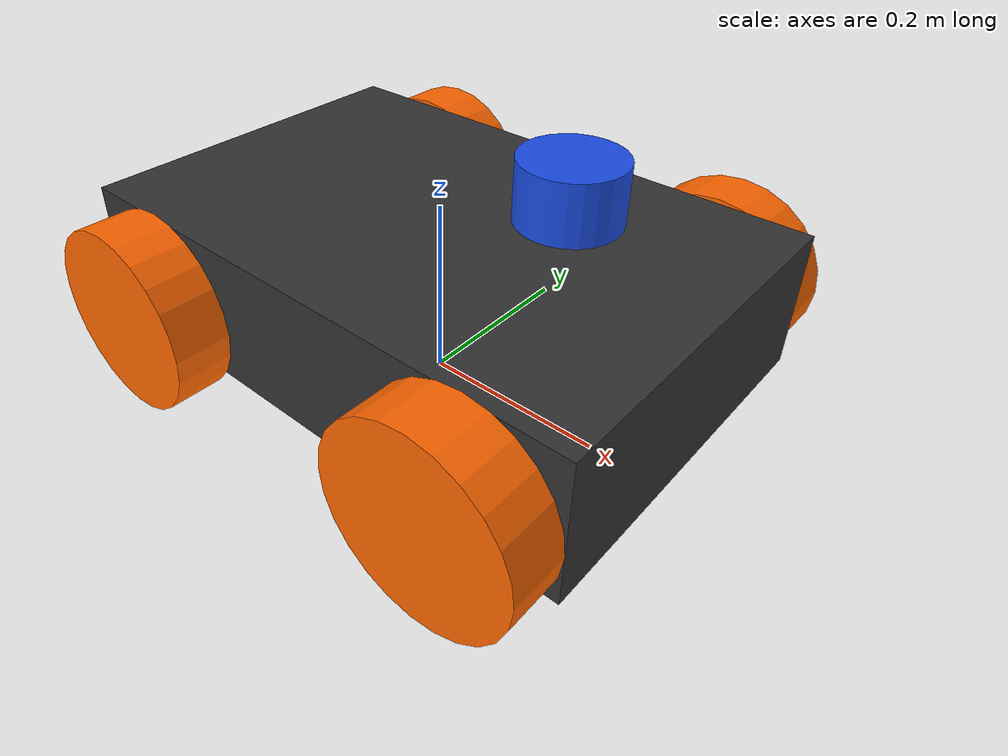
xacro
<?xml version="1.0"?>
<robot xmlns:xacro="http://www.ros.org/wiki/xacro" name="apex_sim_chassis">

  <!-- ==================== Base Link & Chassis ==================== -->
  <link name="base_link"/>

  <joint name="base_link_to_chassis" type="fixed">
    <parent link="base_link"/>
    <child link="chassis"/>
    <origin xyz="0 0 0.12" rpy="0 0 0"/>
  </joint>

  <link name="chassis">
    <visual>
      <origin xyz="0 0 0" rpy="0 0 0"/>
      <geometry>
        <box size="0.6 0.4 0.15"/>
      </geometry>
      <material name="dark">
        <color rgba="0.2 0.2 0.2 1.0"/>
      </material>
    </visual>
    <collision>
      <origin xyz="0 0 0" rpy="0 0 0"/>
      <geometry>
        <box size="0.6 0.4 0.15"/>
      </geometry>
    </collision>
    <inertial>
      <origin xyz="0 0 0" rpy="0 0 0"/>
      <mass value="15.0"/>
      <inertia ixx="0.22" ixy="0" ixz="0" iyy="0.47" iyz="0" izz="0.65"/>
    </inertial>
  </link>

  <!-- ==================== Wheels ==================== -->
  <xacro:macro name="wheel" params="name x_pos y_pos">
    <joint name="${name}_joint" type="continuous">
      <parent link="chassis"/>
      <child link="${name}_link"/>
      <origin xyz="${x_pos} ${y_pos} -0.02" rpy="-1.5708 0 0"/>
      <axis xyz="0 0 1"/>
    </joint>

    <link name="${name}_link">
      <visual>
        <origin xyz="0 0 0" rpy="0 0 0"/>
        <geometry>
          <cylinder radius="0.1" length="0.06"/>
        </geometry>
        <material name="orange">
          <color rgba="1.0 0.4 0.0 1.0"/>
        </material>
      </visual>
      <collision>
        <origin xyz="0 0 0" rpy="0 0 0"/>
        <geometry>
          <cylinder radius="0.1" length="0.06"/>
        </geometry>
      </collision>
      <inertial>
        <origin xyz="0 0 0" rpy="0 0 0"/>
        <mass value="1.5"/>
        <inertia ixx="0.004" ixy="0" ixz="0" iyy="0.004" iyz="0" izz="0.0075"/>
      </inertial>
    </link>

    <gazebo reference="${name}_link">
      <mu1>1.2</mu1>
      <mu2>1.2</mu2>
      <material>Gazebo/Orange</material>
    </gazebo>
  </xacro:macro>

  <xacro:wheel name="front_left_wheel" x_pos="0.2" y_pos="0.23"/>
  <xacro:wheel name="front_right_wheel" x_pos="0.2" y_pos="-0.23"/>
  <xacro:wheel name="rear_left_wheel" x_pos="-0.2" y_pos="0.23"/>
  <xacro:wheel name="rear_right_wheel" x_pos="-0.2" y_pos="-0.23"/>

  <!-- ==================== LiDAR ==================== -->
  <joint name="lidar_joint" type="fixed">
    <parent link="chassis"/>
    <child link="lidar_link"/>
    <origin xyz="0.15 0 0.15" rpy="0 0 0"/>
  </joint>

  <link name="lidar_link">
    <visual>
      <origin xyz="0 0 0" rpy="0 0 0"/>
      <geometry>
        <cylinder radius="0.05" length="0.06"/>
      </geometry>
      <material name="blue">
        <color rgba="0.1 0.3 0.9 1.0"/>
      </material>
    </visual>
    <collision>
      <origin xyz="0 0 0" rpy="0 0 0"/>
      <geometry>
        <cylinder radius="0.05" length="0.06"/>
      </geometry>
    </collision>
    <inertial>
      <mass value="0.2"/>
      <inertia ixx="0.0001" ixy="0" ixz="0" iyy="0.0001" iyz="0" izz="0.0001"/>
    </inertial>
  </link>

  <!-- ==================== Gazebo Plugins ==================== -->
  <!-- Differential Drive Motor Controller -->
  <gazebo>
    <plugin name="diff_drive" filename="libgazebo_ros_diff_drive.so">
      <ros>
        <namespace>/</namespace>
        <remapping>cmd_vel:=cmd_vel</remapping>
        <remapping>odom:=wheel/odom</remapping>
      </ros>
      <left_joint>rear_left_wheel_joint</left_joint>
      <right_joint>rear_right_wheel_joint</right_joint>
      <wheel_separation>0.46</wheel_separation>
      <wheel_diameter>0.20</wheel_diameter>
      <max_wheel_torque>20.0</max_wheel_torque>
      <max_wheel_acceleration>2.0</max_wheel_acceleration>
      <publish_odom>true</publish_odom>
      <publish_odom_tf>true</publish_odom_tf>
      <odometry_frame>odom</odometry_frame>
      <robot_base_frame>base_link</robot_base_frame>
    </plugin>
  </gazebo>

  <!-- 2D LiDAR Ray Sensor -->
  <gazebo reference="lidar_link">
    <sensor name="lidar_sensor" type="ray">
      <always_on>true</always_on>
      <update_rate>10.0</update_rate>
      <visualize>true</visualize>
      <ray>
        <scan>
          <horizontal>
            <samples>360</samples>
            <resolution>1</resolution>
            <min_angle>-3.14159</min_angle>
            <max_angle>3.14159</max_angle>
          </horizontal>
        </scan>
        <range>
          <min>0.15</min>
          <max>12.0</max>
          <resolution>0.01</resolution>
        </range>
      </ray>
      <plugin name="gazebo_lidar" filename="libgazebo_ros_ray_sensor.so">
        <ros>
          <remapping>~/out:=scan</remapping>
        </ros>
        <output_type>sensor_msgs/LaserScan</output_type>
        <frame_name>lidar_link</frame_name>
      </plugin>
    </sensor>
  </gazebo>

</robot>
